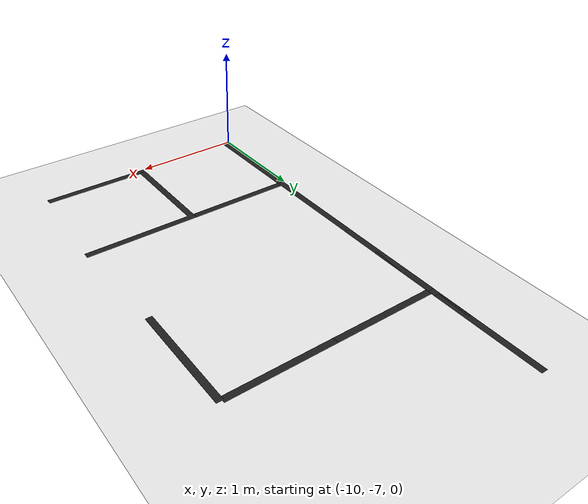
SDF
<sdf version="1.7">
 <world name="default">
  <model name="ground_plane">
   <static>1</static>
   <link name="link">
    <collision name="collision">
     <geometry><plane><normal>0 0 1</normal><size>100 100</size></plane></geometry>
     <surface>
      <contact><collide_bitmask>65535</collide_bitmask></contact>
      <friction><ode><mu>100</mu><mu2>50</mu2></ode></friction>
     </surface>
    </collision>
    <visual name="visual">
     <cast_shadows>0</cast_shadows>
     <geometry><plane><normal>0 0 1</normal><size>100 100</size></plane></geometry>
     <material>
      <script><uri>file://media/materials/scripts/gazebo.material</uri><name>Gazebo/White</name></script>
     </material>
    </visual>
   </link>
  </model>
  <model name="segment_10">
   <link name="straight_link">
    <inertial>
     <mass>1</mass>
     <inertia>
      <ixx>0.166667</ixx>
      <ixy>0</ixy>
      <ixz>0</ixz>
      <iyy>0.166667</iyy>
      <iyz>0</iyz>
      <izz>0.166667</izz>
     </inertia>
    </inertial>
    <visual name="visual">
     <geometry><box><size>1 0.06 0.000937</size></box></geometry>
     <material>
      <script><name>Gazebo/Black</name><uri>file://media/materials/scripts/gazebo.material</uri></script>
      <shader type="pixel"><normal_map>__default__</normal_map></shader>
      <ambient>0 0 0 1</ambient>
      <diffuse>0 0 0 1</diffuse>
      <specular>0.1 0.1 0.1 1</specular>
      <emissive>0 0 0 1</emissive>
     </material>
    </visual>
    <collision name="collision">
     <geometry><box><size>1 0.06 0.000937</size></box></geometry>
     <surface>
      <friction>
       <ode><mu>1</mu><mu2>1</mu2><fdir1>0 0 0</fdir1><slip1>0</slip1><slip2>0</slip2></ode>
       <torsional>
        <coefficient>1</coefficient>
        <patch_radius>0</patch_radius>
        <surface_radius>0</surface_radius>
        <use_patch_radius>1</use_patch_radius>
        <ode><slip>0</slip></ode>
       </torsional>
      </friction>
      <bounce><restitution_coefficient>0</restitution_coefficient><threshold>1e+06</threshold></bounce>
      <contact>
       <collide_without_contact>0</collide_without_contact>
       <collide_without_contact_bitmask>1</collide_without_contact_bitmask>
       <collide_bitmask>1</collide_bitmask>
       <ode>
        <soft_cfm>0</soft_cfm>
        <soft_erp>0.2</soft_erp>
        <kp>1e+13</kp>
        <kd>1</kd>
        <max_vel>0.01</max_vel>
        <min_depth>0</min_depth>
       </ode>
       <bullet>
        <split_impulse>1</split_impulse>
        <split_impulse_penetration_threshold>-0.01</split_impulse_penetration_threshold>
        <soft_cfm>0</soft_cfm>
        <soft_erp>0.2</soft_erp>
        <kp>1e+13</kp>
        <kd>1</kd>
       </bullet>
      </contact>
     </surface>
    </collision>
   </link>
   <static>1</static>
   <pose>-8.41863 -5.98959 0 0 -0 0</pose>
  </model>
  <model name="right_segment_11">
   <link name="right_link">
    <inertial>
     <mass>1</mass>
     <inertia>
      <ixx>0.166667</ixx>
      <ixy>0</ixy>
      <ixz>0</ixz>
      <iyy>0.166667</iyy>
      <iyz>0</iyz>
      <izz>0.166667</izz>
     </inertia>
    </inertial>
    <visual name="visual">
     <geometry><box><size>0.06 1 0.000937</size></box></geometry>
     <material>
      <script><name>Gazebo/Black</name><uri>file://media/materials/scripts/gazebo.material</uri></script>
      <shader type="pixel"><normal_map>__default__</normal_map></shader>
      <ambient>0 0 0 1</ambient>
      <diffuse>0 0 0 1</diffuse>
      <specular>0.1 0.1 0.1 1</specular>
      <emissive>0 0 0 1</emissive>
     </material>
    </visual>
    <collision name="collision">
     <geometry><box><size>0.06 1 0.000937</size></box></geometry>
     <surface>
      <friction>
       <ode><mu>1</mu><mu2>1</mu2><fdir1>0 0 0</fdir1><slip1>0</slip1><slip2>0</slip2></ode>
       <torsional>
        <coefficient>1</coefficient>
        <patch_radius>0</patch_radius>
        <surface_radius>0</surface_radius>
        <use_patch_radius>1</use_patch_radius>
        <ode><slip>0</slip></ode>
       </torsional>
      </friction>
      <bounce><restitution_coefficient>0</restitution_coefficient><threshold>1e+06</threshold></bounce>
      <contact>
       <collide_without_contact>0</collide_without_contact>
       <collide_without_contact_bitmask>1</collide_without_contact_bitmask>
       <collide_bitmask>1</collide_bitmask>
       <ode>
        <soft_cfm>0</soft_cfm>
        <soft_erp>0.2</soft_erp>
        <kp>1e+13</kp>
        <kd>1</kd>
        <max_vel>0.01</max_vel>
        <min_depth>0</min_depth>
       </ode>
       <bullet>
        <split_impulse>1</split_impulse>
        <split_impulse_penetration_threshold>-0.01</split_impulse_penetration_threshold>
        <soft_cfm>0</soft_cfm>
        <soft_erp>0.2</soft_erp>
        <kp>1e+13</kp>
        <kd>1</kd>
       </bullet>
      </contact>
     </surface>
    </collision>
   </link>
   <static>1</static>
   <pose>-8.95016 -6.45898 0.000468 0 -0 1.4e-05</pose>
  </model>
  <model name="segment_12">
   <link name="straight_link">
    <inertial>
     <mass>1</mass>
     <inertia>
      <ixx>0.166667</ixx>
      <ixy>0</ixy>
      <ixz>0</ixz>
      <iyy>0.166667</iyy>
      <iyz>0</iyz>
      <izz>0.166667</izz>
     </inertia>
    </inertial>
    <visual name="visual">
     <geometry><box><size>1 0.06 0.000937</size></box></geometry>
     <material>
      <script><name>Gazebo/Black</name><uri>file://media/materials/scripts/gazebo.material</uri></script>
      <shader type="pixel"><normal_map>__default__</normal_map></shader>
      <ambient>0 0 0 1</ambient>
      <diffuse>0 0 0 1</diffuse>
      <specular>0.1 0.1 0.1 1</specular>
      <emissive>0 0 0 1</emissive>
     </material>
    </visual>
    <collision name="collision">
     <geometry><box><size>1 0.06 0.000937</size></box></geometry>
     <surface>
      <friction>
       <ode><mu>1</mu><mu2>1</mu2><fdir1>0 0 0</fdir1><slip1>0</slip1><slip2>0</slip2></ode>
       <torsional>
        <coefficient>1</coefficient>
        <patch_radius>0</patch_radius>
        <surface_radius>0</surface_radius>
        <use_patch_radius>1</use_patch_radius>
        <ode><slip>0</slip></ode>
       </torsional>
      </friction>
      <bounce><restitution_coefficient>0</restitution_coefficient><threshold>1e+06</threshold></bounce>
      <contact>
       <collide_without_contact>0</collide_without_contact>
       <collide_without_contact_bitmask>1</collide_without_contact_bitmask>
       <collide_bitmask>1</collide_bitmask>
       <ode>
        <soft_cfm>0</soft_cfm>
        <soft_erp>0.2</soft_erp>
        <kp>1e+13</kp>
        <kd>1</kd>
        <max_vel>0.01</max_vel>
        <min_depth>0</min_depth>
       </ode>
       <bullet>
        <split_impulse>1</split_impulse>
        <split_impulse_penetration_threshold>-0.01</split_impulse_penetration_threshold>
        <soft_cfm>0</soft_cfm>
        <soft_erp>0.2</soft_erp>
        <kp>1e+13</kp>
        <kd>1</kd>
       </bullet>
      </contact>
     </surface>
    </collision>
   </link>
   <static>1</static>
   <pose>-8.47809 -6.97387 0 0 -0 0</pose>
  </model>
  <model name="segment_13">
   <link name="straight_link">
    <inertial>
     <mass>1</mass>
     <inertia>
      <ixx>0.166667</ixx>
      <ixy>0</ixy>
      <ixz>0</ixz>
      <iyy>0.166667</iyy>
      <iyz>0</iyz>
      <izz>0.166667</izz>
     </inertia>
    </inertial>
    <visual name="visual">
     <geometry><box><size>1 0.06 0.000937</size></box></geometry>
     <material>
      <script><name>Gazebo/Black</name><uri>file://media/materials/scripts/gazebo.material</uri></script>
      <shader type="pixel"><normal_map>__default__</normal_map></shader>
      <ambient>0 0 0 1</ambient>
      <diffuse>0 0 0 1</diffuse>
      <specular>0.1 0.1 0.1 1</specular>
      <emissive>0 0 0 1</emissive>
     </material>
    </visual>
    <collision name="collision">
     <geometry><box><size>1 0.06 0.000937</size></box></geometry>
     <surface>
      <friction>
       <ode><mu>1</mu><mu2>1</mu2><fdir1>0 0 0</fdir1><slip1>0</slip1><slip2>0</slip2></ode>
       <torsional>
        <coefficient>1</coefficient>
        <patch_radius>0</patch_radius>
        <surface_radius>0</surface_radius>
        <use_patch_radius>1</use_patch_radius>
        <ode><slip>0</slip></ode>
       </torsional>
      </friction>
      <bounce><restitution_coefficient>0</restitution_coefficient><threshold>1e+06</threshold></bounce>
      <contact>
       <collide_without_contact>0</collide_without_contact>
       <collide_without_contact_bitmask>1</collide_without_contact_bitmask>
       <collide_bitmask>1</collide_bitmask>
       <ode>
        <soft_cfm>0</soft_cfm>
        <soft_erp>0.2</soft_erp>
        <kp>1e+13</kp>
        <kd>1</kd>
        <max_vel>0.01</max_vel>
        <min_depth>0</min_depth>
       </ode>
       <bullet>
        <split_impulse>1</split_impulse>
        <split_impulse_penetration_threshold>-0.01</split_impulse_penetration_threshold>
        <soft_cfm>0</soft_cfm>
        <soft_erp>0.2</soft_erp>
        <kp>1e+13</kp>
        <kd>1</kd>
       </bullet>
      </contact>
     </surface>
    </collision>
   </link>
   <static>1</static>
   <pose>-9.46717 -5.98905 0 0 -0 0</pose>
  </model>
  <model name="right_segment_12">
   <link name="right_link">
    <inertial>
     <mass>1</mass>
     <inertia>
      <ixx>0.166667</ixx>
      <ixy>0</ixy>
      <ixz>0</ixz>
      <iyy>0.166667</iyy>
      <iyz>0</iyz>
      <izz>0.166667</izz>
     </inertia>
    </inertial>
    <visual name="visual">
     <geometry><box><size>0.06 1 0.000937</size></box></geometry>
     <material>
      <script><name>Gazebo/Black</name><uri>file://media/materials/scripts/gazebo.material</uri></script>
      <shader type="pixel"><normal_map>__default__</normal_map></shader>
      <ambient>0 0 0 1</ambient>
      <diffuse>0 0 0 1</diffuse>
      <specular>0.1 0.1 0.1 1</specular>
      <emissive>0 0 0 1</emissive>
     </material>
    </visual>
    <collision name="collision">
     <geometry><box><size>0.06 1 0.000937</size></box></geometry>
     <surface>
      <friction>
       <ode><mu>1</mu><mu2>1</mu2><fdir1>0 0 0</fdir1><slip1>0</slip1><slip2>0</slip2></ode>
       <torsional>
        <coefficient>1</coefficient>
        <patch_radius>0</patch_radius>
        <surface_radius>0</surface_radius>
        <use_patch_radius>1</use_patch_radius>
        <ode><slip>0</slip></ode>
       </torsional>
      </friction>
      <bounce><restitution_coefficient>0</restitution_coefficient><threshold>1e+06</threshold></bounce>
      <contact>
       <collide_without_contact>0</collide_without_contact>
       <collide_without_contact_bitmask>1</collide_without_contact_bitmask>
       <collide_bitmask>1</collide_bitmask>
       <ode>
        <soft_cfm>0</soft_cfm>
        <soft_erp>0.2</soft_erp>
        <kp>1e+13</kp>
        <kd>1</kd>
        <max_vel>0.01</max_vel>
        <min_depth>0</min_depth>
       </ode>
       <bullet>
        <split_impulse>1</split_impulse>
        <split_impulse_penetration_threshold>-0.01</split_impulse_penetration_threshold>
        <soft_cfm>0</soft_cfm>
        <soft_erp>0.2</soft_erp>
        <kp>1e+13</kp>
        <kd>1</kd>
       </bullet>
      </contact>
     </surface>
    </collision>
   </link>
   <static>1</static>
   <pose>-9.96206 -5.51693 0.000468 0 -0 1.4e-05</pose>
  </model>
  <model name="right_segment_13">
   <link name="right_link">
    <inertial>
     <mass>1</mass>
     <inertia>
      <ixx>0.166667</ixx>
      <ixy>0</ixy>
      <ixz>0</ixz>
      <iyy>0.166667</iyy>
      <iyz>0</iyz>
      <izz>0.166667</izz>
     </inertia>
    </inertial>
    <visual name="visual">
     <geometry><box><size>0.06 1 0.000937</size></box></geometry>
     <material>
      <script><name>Gazebo/Black</name><uri>file://media/materials/scripts/gazebo.material</uri></script>
      <shader type="pixel"><normal_map>__default__</normal_map></shader>
      <ambient>0 0 0 1</ambient>
      <diffuse>0 0 0 1</diffuse>
      <specular>0.1 0.1 0.1 1</specular>
      <emissive>0 0 0 1</emissive>
     </material>
    </visual>
    <collision name="collision">
     <geometry><box><size>0.06 1 0.000937</size></box></geometry>
     <surface>
      <friction>
       <ode><mu>1</mu><mu2>1</mu2><fdir1>0 0 0</fdir1><slip1>0</slip1><slip2>0</slip2></ode>
       <torsional>
        <coefficient>1</coefficient>
        <patch_radius>0</patch_radius>
        <surface_radius>0</surface_radius>
        <use_patch_radius>1</use_patch_radius>
        <ode><slip>0</slip></ode>
       </torsional>
      </friction>
      <bounce><restitution_coefficient>0</restitution_coefficient><threshold>1e+06</threshold></bounce>
      <contact>
       <collide_without_contact>0</collide_without_contact>
       <collide_without_contact_bitmask>1</collide_without_contact_bitmask>
       <collide_bitmask>1</collide_bitmask>
       <ode>
        <soft_cfm>0</soft_cfm>
        <soft_erp>0.2</soft_erp>
        <kp>1e+13</kp>
        <kd>1</kd>
        <max_vel>0.01</max_vel>
        <min_depth>0</min_depth>
       </ode>
       <bullet>
        <split_impulse>1</split_impulse>
        <split_impulse_penetration_threshold>-0.01</split_impulse_penetration_threshold>
        <soft_cfm>0</soft_cfm>
        <soft_erp>0.2</soft_erp>
        <kp>1e+13</kp>
        <kd>1</kd>
       </bullet>
      </contact>
     </surface>
    </collision>
   </link>
   <static>1</static>
   <pose>-9.95976 -6.50458 0.000468 0 -0 1.4e-05</pose>
  </model>
  <model name="right_segment_15">
   <link name="right_link">
    <inertial>
     <mass>1</mass>
     <inertia>
      <ixx>0.166667</ixx>
      <ixy>0</ixy>
      <ixz>0</ixz>
      <iyy>0.166667</iyy>
      <iyz>0</iyz>
      <izz>0.166667</izz>
     </inertia>
    </inertial>
    <visual name="visual">
     <geometry><box><size>0.06 1 0.000937</size></box></geometry>
     <material>
      <script><name>Gazebo/Black</name><uri>file://media/materials/scripts/gazebo.material</uri></script>
      <shader type="pixel"><normal_map>__default__</normal_map></shader>
      <ambient>0 0 0 1</ambient>
      <diffuse>0 0 0 1</diffuse>
      <specular>0.1 0.1 0.1 1</specular>
      <emissive>0 0 0 1</emissive>
     </material>
    </visual>
    <collision name="collision">
     <geometry><box><size>0.06 1 0.000937</size></box></geometry>
     <surface>
      <friction>
       <ode><mu>1</mu><mu2>1</mu2><fdir1>0 0 0</fdir1><slip1>0</slip1><slip2>0</slip2></ode>
       <torsional>
        <coefficient>1</coefficient>
        <patch_radius>0</patch_radius>
        <surface_radius>0</surface_radius>
        <use_patch_radius>1</use_patch_radius>
        <ode><slip>0</slip></ode>
       </torsional>
      </friction>
      <bounce><restitution_coefficient>0</restitution_coefficient><threshold>1e+06</threshold></bounce>
      <contact>
       <collide_without_contact>0</collide_without_contact>
       <collide_without_contact_bitmask>1</collide_without_contact_bitmask>
       <collide_bitmask>1</collide_bitmask>
       <ode>
        <soft_cfm>0</soft_cfm>
        <soft_erp>0.2</soft_erp>
        <kp>1e+13</kp>
        <kd>1</kd>
        <max_vel>0.01</max_vel>
        <min_depth>0</min_depth>
       </ode>
       <bullet>
        <split_impulse>1</split_impulse>
        <split_impulse_penetration_threshold>-0.01</split_impulse_penetration_threshold>
        <soft_cfm>0</soft_cfm>
        <soft_erp>0.2</soft_erp>
        <kp>1e+13</kp>
        <kd>1</kd>
       </bullet>
      </contact>
     </surface>
    </collision>
   </link>
   <static>1</static>
   <pose>-7.98733 -4.50288 0.000468 0 -0 1.4e-05</pose>
  </model>
  <model name="segment_16">
   <link name="straight_link">
    <inertial>
     <mass>1</mass>
     <inertia>
      <ixx>0.166667</ixx>
      <ixy>0</ixy>
      <ixz>0</ixz>
      <iyy>0.166667</iyy>
      <iyz>0</iyz>
      <izz>0.166667</izz>
     </inertia>
    </inertial>
    <visual name="visual">
     <geometry><box><size>1 0.06 0.000937</size></box></geometry>
     <material>
      <script><name>Gazebo/Black</name><uri>file://media/materials/scripts/gazebo.material</uri></script>
      <shader type="pixel"><normal_map>__default__</normal_map></shader>
      <ambient>0 0 0 1</ambient>
      <diffuse>0 0 0 1</diffuse>
      <specular>0.1 0.1 0.1 1</specular>
      <emissive>0 0 0 1</emissive>
     </material>
    </visual>
    <collision name="collision">
     <geometry><box><size>1 0.06 0.000937</size></box></geometry>
     <surface>
      <friction>
       <ode><mu>1</mu><mu2>1</mu2><fdir1>0 0 0</fdir1><slip1>0</slip1><slip2>0</slip2></ode>
       <torsional>
        <coefficient>1</coefficient>
        <patch_radius>0</patch_radius>
        <surface_radius>0</surface_radius>
        <use_patch_radius>1</use_patch_radius>
        <ode><slip>0</slip></ode>
       </torsional>
      </friction>
      <bounce><restitution_coefficient>0</restitution_coefficient><threshold>1e+06</threshold></bounce>
      <contact>
       <collide_without_contact>0</collide_without_contact>
       <collide_without_contact_bitmask>1</collide_without_contact_bitmask>
       <collide_bitmask>1</collide_bitmask>
       <ode>
        <soft_cfm>0</soft_cfm>
        <soft_erp>0.2</soft_erp>
        <kp>1e+13</kp>
        <kd>1</kd>
        <max_vel>0.01</max_vel>
        <min_depth>0</min_depth>
       </ode>
       <bullet>
        <split_impulse>1</split_impulse>
        <split_impulse_penetration_threshold>-0.01</split_impulse_penetration_threshold>
        <soft_cfm>0</soft_cfm>
        <soft_erp>0.2</soft_erp>
        <kp>1e+13</kp>
        <kd>1</kd>
       </bullet>
      </contact>
     </surface>
    </collision>
   </link>
   <static>1</static>
   <pose>-8.50464 -4.00891 0 0 -0 0</pose>
  </model>
  <model name="segment_17">
   <link name="straight_link">
    <inertial>
     <mass>1</mass>
     <inertia>
      <ixx>0.166667</ixx>
      <ixy>0</ixy>
      <ixz>0</ixz>
      <iyy>0.166667</iyy>
      <iyz>0</iyz>
      <izz>0.166667</izz>
     </inertia>
    </inertial>
    <visual name="visual">
     <geometry><box><size>1 0.06 0.000937</size></box></geometry>
     <material>
      <script><name>Gazebo/Black</name><uri>file://media/materials/scripts/gazebo.material</uri></script>
      <shader type="pixel"><normal_map>__default__</normal_map></shader>
      <ambient>0 0 0 1</ambient>
      <diffuse>0 0 0 1</diffuse>
      <specular>0.1 0.1 0.1 1</specular>
      <emissive>0 0 0 1</emissive>
     </material>
    </visual>
    <collision name="collision">
     <geometry><box><size>1 0.06 0.000937</size></box></geometry>
     <surface>
      <friction>
       <ode><mu>1</mu><mu2>1</mu2><fdir1>0 0 0</fdir1><slip1>0</slip1><slip2>0</slip2></ode>
       <torsional>
        <coefficient>1</coefficient>
        <patch_radius>0</patch_radius>
        <surface_radius>0</surface_radius>
        <use_patch_radius>1</use_patch_radius>
        <ode><slip>0</slip></ode>
       </torsional>
      </friction>
      <bounce><restitution_coefficient>0</restitution_coefficient><threshold>1e+06</threshold></bounce>
      <contact>
       <collide_without_contact>0</collide_without_contact>
       <collide_without_contact_bitmask>1</collide_without_contact_bitmask>
       <collide_bitmask>1</collide_bitmask>
       <ode>
        <soft_cfm>0</soft_cfm>
        <soft_erp>0.2</soft_erp>
        <kp>1e+13</kp>
        <kd>1</kd>
        <max_vel>0.01</max_vel>
        <min_depth>0</min_depth>
       </ode>
       <bullet>
        <split_impulse>1</split_impulse>
        <split_impulse_penetration_threshold>-0.01</split_impulse_penetration_threshold>
        <soft_cfm>0</soft_cfm>
        <soft_erp>0.2</soft_erp>
        <kp>1e+13</kp>
        <kd>1</kd>
       </bullet>
      </contact>
     </surface>
    </collision>
   </link>
   <static>1</static>
   <pose>-9.48026 -4.00878 0 0 -0 0</pose>
  </model>
  <model name="right_segment_17">
   <link name="right_link">
    <inertial>
     <mass>1</mass>
     <inertia>
      <ixx>0.166667</ixx>
      <ixy>0</ixy>
      <ixz>0</ixz>
      <iyy>0.166667</iyy>
      <iyz>0</iyz>
      <izz>0.166667</izz>
     </inertia>
    </inertial>
    <visual name="visual">
     <geometry><box><size>0.06 1 0.000937</size></box></geometry>
     <material>
      <script><name>Gazebo/Black</name><uri>file://media/materials/scripts/gazebo.material</uri></script>
      <shader type="pixel"><normal_map>__default__</normal_map></shader>
      <ambient>0 0 0 1</ambient>
      <diffuse>0 0 0 1</diffuse>
      <specular>0.1 0.1 0.1 1</specular>
      <emissive>0 0 0 1</emissive>
     </material>
    </visual>
    <collision name="collision">
     <geometry><box><size>0.06 1 0.000937</size></box></geometry>
     <surface>
      <friction>
       <ode><mu>1</mu><mu2>1</mu2><fdir1>0 0 0</fdir1><slip1>0</slip1><slip2>0</slip2></ode>
       <torsional>
        <coefficient>1</coefficient>
        <patch_radius>0</patch_radius>
        <surface_radius>0</surface_radius>
        <use_patch_radius>1</use_patch_radius>
        <ode><slip>0</slip></ode>
       </torsional>
      </friction>
      <bounce><restitution_coefficient>0</restitution_coefficient><threshold>1e+06</threshold></bounce>
      <contact>
       <collide_without_contact>0</collide_without_contact>
       <collide_without_contact_bitmask>1</collide_without_contact_bitmask>
       <collide_bitmask>1</collide_bitmask>
       <ode>
        <soft_cfm>0</soft_cfm>
        <soft_erp>0.2</soft_erp>
        <kp>1e+13</kp>
        <kd>1</kd>
        <max_vel>0.01</max_vel>
        <min_depth>0</min_depth>
       </ode>
       <bullet>
        <split_impulse>1</split_impulse>
        <split_impulse_penetration_threshold>-0.01</split_impulse_penetration_threshold>
        <soft_cfm>0</soft_cfm>
        <soft_erp>0.2</soft_erp>
        <kp>1e+13</kp>
        <kd>1</kd>
       </bullet>
      </contact>
     </surface>
    </collision>
   </link>
   <static>1</static>
   <pose>-9.96062 -4.51553 0.000468 0 -0 1.4e-05</pose>
  </model>
  <model name="right_segment_20">
   <link name="right_link">
    <inertial>
     <mass>1</mass>
     <inertia>
      <ixx>0.166667</ixx>
      <ixy>0</ixy>
      <ixz>0</ixz>
      <iyy>0.166667</iyy>
      <iyz>0</iyz>
      <izz>0.166667</izz>
     </inertia>
    </inertial>
    <visual name="visual">
     <geometry><box><size>0.06 1 0.000937</size></box></geometry>
     <material>
      <script><name>Gazebo/Black</name><uri>file://media/materials/scripts/gazebo.material</uri></script>
      <shader type="pixel"><normal_map>__default__</normal_map></shader>
      <ambient>0 0 0 1</ambient>
      <diffuse>0 0 0 1</diffuse>
      <specular>0.1 0.1 0.1 1</specular>
      <emissive>0 0 0 1</emissive>
     </material>
    </visual>
    <collision name="collision">
     <geometry><box><size>0.06 1 0.000937</size></box></geometry>
     <surface>
      <friction>
       <ode><mu>1</mu><mu2>1</mu2><fdir1>0 0 0</fdir1><slip1>0</slip1><slip2>0</slip2></ode>
       <torsional>
        <coefficient>1</coefficient>
        <patch_radius>0</patch_radius>
        <surface_radius>0</surface_radius>
        <use_patch_radius>1</use_patch_radius>
        <ode><slip>0</slip></ode>
       </torsional>
      </friction>
      <bounce><restitution_coefficient>0</restitution_coefficient><threshold>1e+06</threshold></bounce>
      <contact>
       <collide_without_contact>0</collide_without_contact>
       <collide_without_contact_bitmask>1</collide_without_contact_bitmask>
       <collide_bitmask>1</collide_bitmask>
       <ode>
        <soft_cfm>0</soft_cfm>
        <soft_erp>0.2</soft_erp>
        <kp>1e+13</kp>
        <kd>1</kd>
        <max_vel>0.01</max_vel>
        <min_depth>0</min_depth>
       </ode>
       <bullet>
        <split_impulse>1</split_impulse>
        <split_impulse_penetration_threshold>-0.01</split_impulse_penetration_threshold>
        <soft_cfm>0</soft_cfm>
        <soft_erp>0.2</soft_erp>
        <kp>1e+13</kp>
        <kd>1</kd>
       </bullet>
      </contact>
     </surface>
    </collision>
   </link>
   <static>1</static>
   <pose>-9.95823 -3.44908 0.000468 0 -0 1.4e-05</pose>
  </model>
  <model name="right_segment_21">
   <link name="right_link">
    <inertial>
     <mass>1</mass>
     <inertia>
      <ixx>0.166667</ixx>
      <ixy>0</ixy>
      <ixz>0</ixz>
      <iyy>0.166667</iyy>
      <iyz>0</iyz>
      <izz>0.166667</izz>
     </inertia>
    </inertial>
    <visual name="visual">
     <geometry><box><size>0.06 1 0.000937</size></box></geometry>
     <material>
      <script><name>Gazebo/Black</name><uri>file://media/materials/scripts/gazebo.material</uri></script>
      <shader type="pixel"><normal_map>__default__</normal_map></shader>
      <ambient>0 0 0 1</ambient>
      <diffuse>0 0 0 1</diffuse>
      <specular>0.1 0.1 0.1 1</specular>
      <emissive>0 0 0 1</emissive>
     </material>
    </visual>
    <collision name="collision">
     <geometry><box><size>0.06 1 0.000937</size></box></geometry>
     <surface>
      <friction>
       <ode><mu>1</mu><mu2>1</mu2><fdir1>0 0 0</fdir1><slip1>0</slip1><slip2>0</slip2></ode>
       <torsional>
        <coefficient>1</coefficient>
        <patch_radius>0</patch_radius>
        <surface_radius>0</surface_radius>
        <use_patch_radius>1</use_patch_radius>
        <ode><slip>0</slip></ode>
       </torsional>
      </friction>
      <bounce><restitution_coefficient>0</restitution_coefficient><threshold>1e+06</threshold></bounce>
      <contact>
       <collide_without_contact>0</collide_without_contact>
       <collide_without_contact_bitmask>1</collide_without_contact_bitmask>
       <collide_bitmask>1</collide_bitmask>
       <ode>
        <soft_cfm>0</soft_cfm>
        <soft_erp>0.2</soft_erp>
        <kp>1e+13</kp>
        <kd>1</kd>
        <max_vel>0.01</max_vel>
        <min_depth>0</min_depth>
       </ode>
       <bullet>
        <split_impulse>1</split_impulse>
        <split_impulse_penetration_threshold>-0.01</split_impulse_penetration_threshold>
        <soft_cfm>0</soft_cfm>
        <soft_erp>0.2</soft_erp>
        <kp>1e+13</kp>
        <kd>1</kd>
       </bullet>
      </contact>
     </surface>
    </collision>
   </link>
   <static>1</static>
   <pose>-9.95912 -4.13413 0.000468 0 -0 1.4e-05</pose>
  </model>
 </world>
</sdf>
